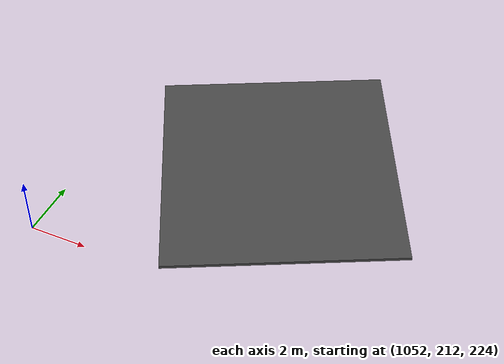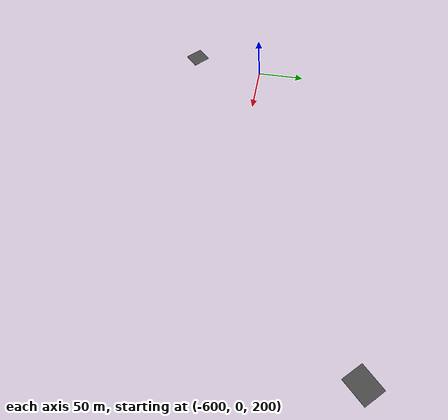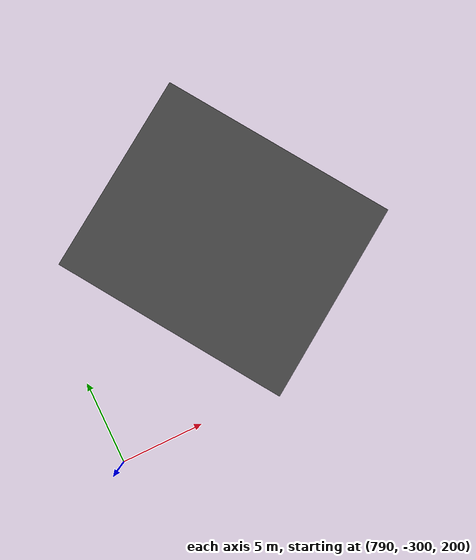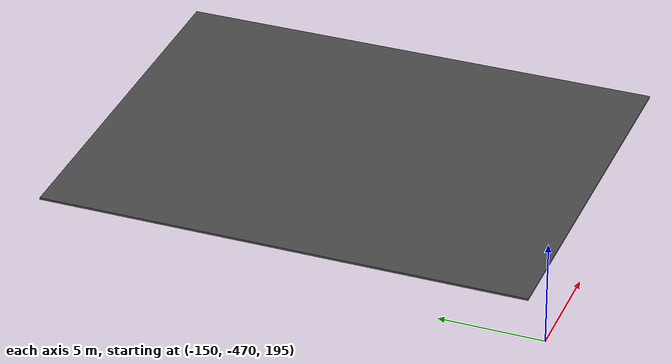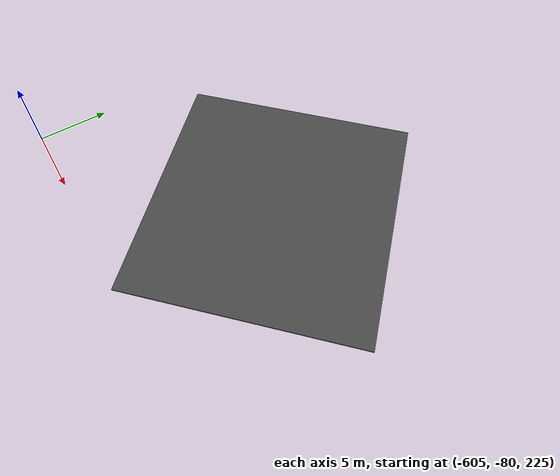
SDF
<sdf version="1.7">
 <world name="default">
  <light name="sun" type="directional">
   <pose>0 0 10 0 -0 0</pose>
   <diffuse>0.8 0.8 0.8 1</diffuse>
   <specular>0.2 0.2 0.2 1</specular>
   <attenuation>
    <range>1000</range>
    <constant>0.9</constant>
    <linear>0.01</linear>
    <quadratic>0.001</quadratic>
   </attenuation>
   <direction>-0.5 0.1 -0.9</direction>
   <spot><inner_angle>0</inner_angle><outer_angle>0</outer_angle><falloff>0</falloff></spot>
  </light>
  <gravity>0 0 -9.8</gravity>
  <magnetic_field>6e-06 2.3e-05 -4.2e-05</magnetic_field>
  <atmosphere type="adiabatic"/>
  <physics type="ode">
   <max_step_size>0.004</max_step_size>
   <real_time_factor>1</real_time_factor>
   <real_time_update_rate>250</real_time_update_rate>
  </physics>
  <scene><ambient>0.4 0.4 0.4 1</ambient><background>0.7 0.7 0.7 1</background><shadows>1</shadows></scene>
  <audio><device>default</device></audio>
  <spherical_coordinates>
   <surface_model>EARTH_WGS84</surface_model>
   <latitude_deg>0</latitude_deg>
   <longitude_deg>0</longitude_deg>
   <elevation>0</elevation>
   <heading_deg>0</heading_deg>
  </spherical_coordinates>
  <model name="Point_B">
   <static>1</static>
   <link name="link">
    <collision name="collision"><geometry><box><size>18.822 23.8541 0.1</size></box></geometry></collision>
    <visual name="visual">
     <cast_shadows>0</cast_shadows>
     <geometry><box><size>18.822 23.8541 0.1</size></box></geometry>
     <material>
      <script>
       <uri>model://asphalt_plane/materials/scripts</uri>
       <uri>model://asphalt_plane/materials/textures</uri>
       <name>vrc/asphalt</name>
      </script>
     </material>
    </visual>
   </link>
   <pose>-138.36 -456.489 195.381 0 -0 0.003662</pose>
  </model>
  <model name="Point_C">
   <static>1</static>
   <link name="link">
    <collision name="collision"><geometry><box><size>8.19414 9.13629 0.1</size></box></geometry></collision>
    <visual name="visual">
     <cast_shadows>0</cast_shadows>
     <geometry><box><size>8.19414 9.13629 0.1</size></box></geometry>
     <material>
      <script>
       <uri>model://asphalt_plane/materials/scripts</uri>
       <uri>model://asphalt_plane/materials/textures</uri>
       <name>vrc/asphalt</name>
      </script>
     </material>
    </visual>
   </link>
   <pose>1057.98 218.421 223.654 0 -0 0.475874</pose>
  </model>
  <model name="Point_D">
   <static>1</static>
   <link name="link">
    <collision name="collision"><geometry><box><size>12.6073 14.9723 0.1</size></box></geometry></collision>
    <visual name="visual">
     <cast_shadows>0</cast_shadows>
     <geometry><box><size>12.6073 14.9723 0.1</size></box></geometry>
     <material>
      <script>
       <uri>model://asphalt_plane/materials/scripts</uri>
       <uri>model://asphalt_plane/materials/textures</uri>
       <name>vrc/asphalt</name>
      </script>
     </material>
    </visual>
   </link>
   <pose>800.897 -290.725 200.7 0 -0 0.588657</pose>
  </model>
  <model name="Point_E">
   <static>1</static>
   <link name="link">
    <collision name="collision"><geometry><box><size>16.7108 17.6421 0.1</size></box></geometry></collision>
    <visual name="visual">
     <cast_shadows>0</cast_shadows>
     <geometry><box><size>16.7108 17.6421 0.1</size></box></geometry>
     <material>
      <script>
       <uri>model://asphalt_plane/materials/scripts</uri>
       <uri>model://asphalt_plane/materials/textures</uri>
       <name>vrc/asphalt</name>
      </script>
     </material>
    </visual>
   </link>
   <pose>-590.974 -68.1333 225 0 -0 0.786216</pose>
  </model>
  <model name="Point_A">
   <static>1</static>
   <link name="link">
    <collision name="collision"><geometry><box><size>29.998 23.0961 0.1</size></box></geometry></collision>
    <visual name="visual">
     <cast_shadows>0</cast_shadows>
     <geometry><box><size>29.998 23.0961 0.1</size></box></geometry>
     <material>
      <script>
       <uri>model://asphalt_plane/materials/scripts</uri>
       <uri>model://asphalt_plane/materials/textures</uri>
       <name>vrc/asphalt</name>
      </script>
     </material>
    </visual>
   </link>
   <pose>-246.176 145.099 217 0 -0 0.794344</pose>
  </model>
 </world>
</sdf>
